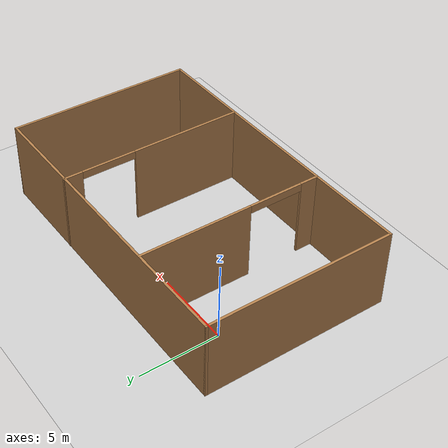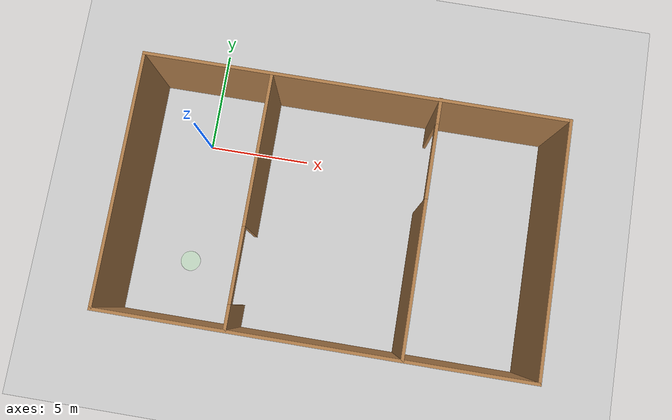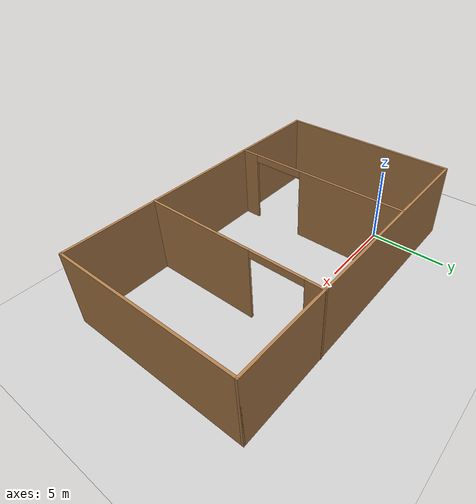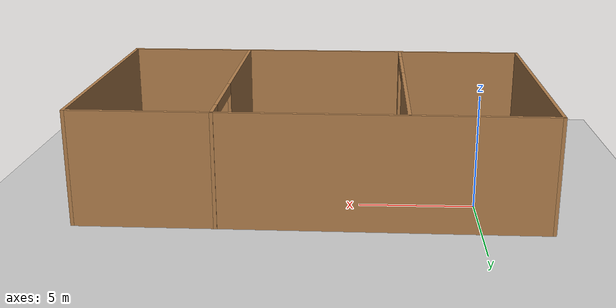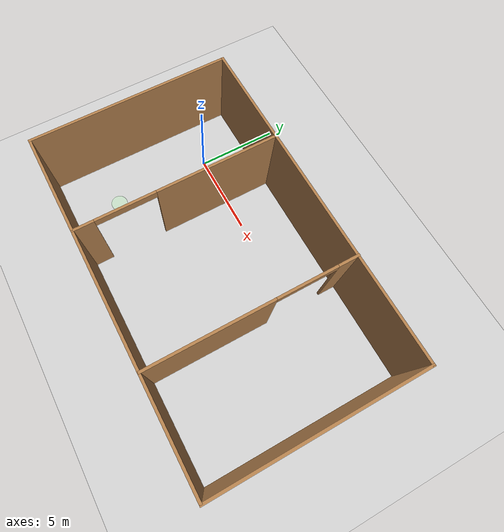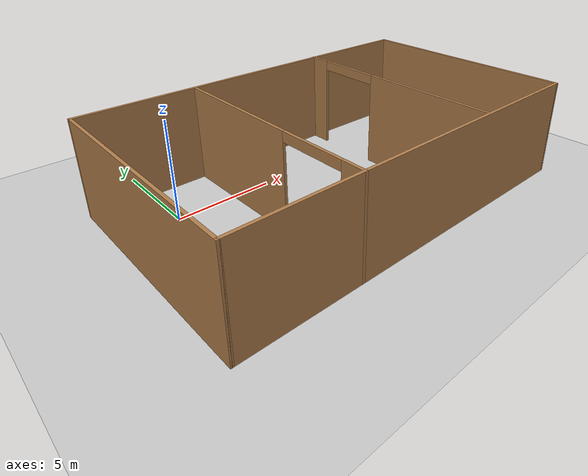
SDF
<?xml version="1.0" ?>
<sdf version='1.6'>
  <world name='default'>
    <light name='sun' type='directional'>
      <cast_shadows>1</cast_shadows>
      <pose frame=''>0 0 10 0 -0 0</pose>
      <diffuse>0.8 0.8 0.8 1</diffuse>
      <specular>0.2 0.2 0.2 1</specular>
      <attenuation>
        <range>1000</range>
        <constant>0.9</constant>
        <linear>0.01</linear>
        <quadratic>0.001</quadratic>
      </attenuation>
      <direction>-0.5 0.1 -0.9</direction>
    </light>
    <model name='ground_plane'>
      <static>1</static>
      <link name='link'>
        <collision name='collision'>
          <geometry>
            <plane>
              <normal>0 0 1</normal>
              <size>100 100</size>
            </plane>
          </geometry>
          <surface>
            <friction>
              <ode>
                <mu>100</mu>
                <mu2>50</mu2>
              </ode>
              <torsional>
                <ode/>
              </torsional>
            </friction>
            <contact>
              <ode/>
            </contact>
            <bounce/>
          </surface>
          <max_contacts>10</max_contacts>
        </collision>
        <visual name='visual'>
          <cast_shadows>0</cast_shadows>
          <geometry>
            <plane>
              <normal>0 0 1</normal>
              <size>100 100</size>
            </plane>
          </geometry>
          <material>
            <script>
              <uri>file://media/materials/scripts/gazebo.material</uri>
              <name>Gazebo/Grey</name>
            </script>
          </material>
        </visual>
        <self_collide>0</self_collide>
        <kinematic>0</kinematic>
        <enable_wind>0</enable_wind>
      </link>
    </model>
    <gravity>0 0 -9.8</gravity>
    <magnetic_field>6e-06 2.3e-05 -4.2e-05</magnetic_field>
    <atmosphere type='adiabatic'/>
    <physics name='default_physics' default='0' type='ode'>
      <max_step_size>0.001</max_step_size>
      <real_time_factor>1</real_time_factor>
      <real_time_update_rate>1000</real_time_update_rate>
    </physics>
    <scene>
      <ambient>0.4 0.4 0.4 1</ambient>
      <background>0.7 0.7 0.7 1</background>
      <shadows>1</shadows>
    </scene>
    <spherical_coordinates>
      <surface_model>EARTH_WGS84</surface_model>
      <latitude_deg>0</latitude_deg>
      <longitude_deg>0</longitude_deg>
      <elevation>0</elevation>
      <heading_deg>0</heading_deg>
    </spherical_coordinates>
    <model name='3rooms'>
      <pose frame=''>7 -3 0 0 -0 0</pose>
      <link name='Wall_12'>
        <pose frame=''>-3.925 -0.0115 0 0 0 -1.5708</pose>
        <visual name='Wall_12_Visual_0'>
          <pose frame=''>-2.37496 0 2.5 0 -0 0</pose>
          <geometry>
            <box>
              <size>7.25007 0.15 5</size>
            </box>
          </geometry>
          <material>
            <script>
              <uri>file://media/materials/scripts/gazebo.material</uri>
              <name>Gazebo/Wood</name>
            </script>
            <ambient>1 1 1 1</ambient>
          </material>
          <meta>
            <layer>0</layer>
          </meta>
        </visual>
        <collision name='Wall_12_Collision_0'>
          <geometry>
            <box>
              <size>7.25007 0.15 5</size>
            </box>
          </geometry>
          <pose frame=''>-2.37496 0 2.5 0 -0 0</pose>
          <max_contacts>10</max_contacts>
          <surface>
            <contact>
              <ode/>
            </contact>
            <bounce/>
            <friction>
              <torsional>
                <ode/>
              </torsional>
              <ode/>
            </friction>
          </surface>
        </collision>
        <visual name='Wall_12_Visual_1'>
          <pose frame=''>5.37504 0 2.5 0 -0 0</pose>
          <geometry>
            <box>
              <size>1.24993 0.15 5</size>
            </box>
          </geometry>
          <material>
            <script>
              <uri>file://media/materials/scripts/gazebo.material</uri>
              <name>Gazebo/Wood</name>
            </script>
            <ambient>1 1 1 1</ambient>
          </material>
          <meta>
            <layer>0</layer>
          </meta>
        </visual>
        <collision name='Wall_12_Collision_1'>
          <geometry>
            <box>
              <size>1.24993 0.15 5</size>
            </box>
          </geometry>
          <pose frame=''>5.37504 0 2.5 0 -0 0</pose>
          <max_contacts>10</max_contacts>
          <surface>
            <contact>
              <ode/>
            </contact>
            <bounce/>
            <friction>
              <torsional>
                <ode/>
              </torsional>
              <ode/>
            </friction>
          </surface>
        </collision>
        <visual name='Wall_12_Visual_2'>
          <pose frame=''>3.00007 0 4.75 0 -0 0</pose>
          <geometry>
            <box>
              <size>3.5 0.15 0.5</size>
            </box>
          </geometry>
          <material>
            <script>
              <uri>file://media/materials/scripts/gazebo.material</uri>
              <name>Gazebo/Wood</name>
            </script>
            <ambient>1 1 1 1</ambient>
          </material>
          <meta>
            <layer>0</layer>
          </meta>
        </visual>
        <collision name='Wall_12_Collision_2'>
          <geometry>
            <box>
              <size>3.5 0.15 0.5</size>
            </box>
          </geometry>
          <pose frame=''>3.00007 0 4.75 0 -0 0</pose>
          <max_contacts>10</max_contacts>
          <surface>
            <contact>
              <ode/>
            </contact>
            <bounce/>
            <friction>
              <torsional>
                <ode/>
              </torsional>
              <ode/>
            </friction>
          </surface>
        </collision>
        <self_collide>0</self_collide>
        <kinematic>0</kinematic>
        <enable_wind>0</enable_wind>
      </link>
      <link name='Wall_14'>
        <pose frame=''>3.925 0.0115 0 0 0 -1.5708</pose>
        <visual name='Wall_14_Visual_0'>
          <pose frame=''>-5.38489 0 2.5 0 -0 0</pose>
          <geometry>
            <box>
              <size>1.23022 0.15 5</size>
            </box>
          </geometry>
          <material>
            <script>
              <uri>file://media/materials/scripts/gazebo.material</uri>
              <name>Gazebo/Wood</name>
            </script>
            <ambient>1 1 1 1</ambient>
          </material>
          <meta>
            <layer>0</layer>
          </meta>
        </visual>
        <collision name='Wall_14_Collision_0'>
          <geometry>
            <box>
              <size>1.23022 0.15 5</size>
            </box>
          </geometry>
          <pose frame=''>-5.38489 0 2.5 0 -0 0</pose>
          <max_contacts>10</max_contacts>
          <surface>
            <contact>
              <ode/>
            </contact>
            <bounce/>
            <friction>
              <torsional>
                <ode/>
              </torsional>
              <ode/>
            </friction>
          </surface>
        </collision>
        <visual name='Wall_14_Visual_1'>
          <pose frame=''>2.36511 0 2.5 0 -0 0</pose>
          <geometry>
            <box>
              <size>7.26978 0.15 5</size>
            </box>
          </geometry>
          <material>
            <script>
              <uri>file://media/materials/scripts/gazebo.material</uri>
              <name>Gazebo/Wood</name>
            </script>
            <ambient>1 1 1 1</ambient>
          </material>
          <meta>
            <layer>0</layer>
          </meta>
        </visual>
        <collision name='Wall_14_Collision_1'>
          <geometry>
            <box>
              <size>7.26978 0.15 5</size>
            </box>
          </geometry>
          <pose frame=''>2.36511 0 2.5 0 -0 0</pose>
          <max_contacts>10</max_contacts>
          <surface>
            <contact>
              <ode/>
            </contact>
            <bounce/>
            <friction>
              <torsional>
                <ode/>
              </torsional>
              <ode/>
            </friction>
          </surface>
        </collision>
        <visual name='Wall_14_Visual_2'>
          <pose frame=''>-3.01978 0 4.75 0 -0 0</pose>
          <geometry>
            <box>
              <size>3.5 0.15 0.5</size>
            </box>
          </geometry>
          <material>
            <script>
              <uri>file://media/materials/scripts/gazebo.material</uri>
              <name>Gazebo/Wood</name>
            </script>
            <ambient>1 1 1 1</ambient>
          </material>
          <meta>
            <layer>0</layer>
          </meta>
        </visual>
        <collision name='Wall_14_Collision_2'>
          <geometry>
            <box>
              <size>3.5 0.15 0.5</size>
            </box>
          </geometry>
          <pose frame=''>-3.01978 0 4.75 0 -0 0</pose>
          <max_contacts>10</max_contacts>
          <surface>
            <contact>
              <ode/>
            </contact>
            <bounce/>
            <friction>
              <torsional>
                <ode/>
              </torsional>
              <ode/>
            </friction>
          </surface>
        </collision>
        <self_collide>0</self_collide>
        <kinematic>0</kinematic>
        <enable_wind>0</enable_wind>
      </link>
      <link name='Wall_3'>
        <collision name='Wall_3_Collision'>
          <geometry>
            <box>
              <size>12 0.15 5</size>
            </box>
          </geometry>
          <pose frame=''>0 0 2.5 0 -0 0</pose>
          <max_contacts>10</max_contacts>
          <surface>
            <contact>
              <ode/>
            </contact>
            <bounce/>
            <friction>
              <torsional>
                <ode/>
              </torsional>
              <ode/>
            </friction>
          </surface>
        </collision>
        <visual name='Wall_3_Visual'>
          <pose frame=''>0 0 2.5 0 -0 0</pose>
          <geometry>
            <box>
              <size>12 0.15 5</size>
            </box>
          </geometry>
          <material>
            <script>
              <uri>file://media/materials/scripts/gazebo.material</uri>
              <name>Gazebo/Wood</name>
            </script>
            <ambient>1 1 1 1</ambient>
          </material>
          <meta>
            <layer>0</layer>
          </meta>
        </visual>
        <pose frame=''>-9.925 -0.0115 0 0 0 -1.5708</pose>
        <self_collide>0</self_collide>
        <kinematic>0</kinematic>
        <enable_wind>0</enable_wind>
      </link>
      <link name='Wall_5'>
        <collision name='Wall_5_Collision'>
          <geometry>
            <box>
              <size>20 0.15 5</size>
            </box>
          </geometry>
          <pose frame=''>0 0 2.5 0 -0 0</pose>
          <max_contacts>10</max_contacts>
          <surface>
            <contact>
              <ode/>
            </contact>
            <bounce/>
            <friction>
              <torsional>
                <ode/>
              </torsional>
              <ode/>
            </friction>
          </surface>
        </collision>
        <visual name='Wall_5_Visual'>
          <pose frame=''>0 0 2.5 0 -0 0</pose>
          <geometry>
            <box>
              <size>20 0.15 5</size>
            </box>
          </geometry>
          <material>
            <script>
              <uri>file://media/materials/scripts/gazebo.material</uri>
              <name>Gazebo/Wood</name>
            </script>
            <ambient>1 1 1 1</ambient>
          </material>
          <meta>
            <layer>0</layer>
          </meta>
        </visual>
        <pose frame=''>0 -5.9365 0 0 -0 0</pose>
        <self_collide>0</self_collide>
        <kinematic>0</kinematic>
        <enable_wind>0</enable_wind>
      </link>
      <link name='Wall_6'>
        <collision name='Wall_6_Collision'>
          <geometry>
            <box>
              <size>12 0.15 5</size>
            </box>
          </geometry>
          <pose frame=''>0 0 2.5 0 -0 0</pose>
          <max_contacts>10</max_contacts>
          <surface>
            <contact>
              <ode/>
            </contact>
            <bounce/>
            <friction>
              <torsional>
                <ode/>
              </torsional>
              <ode/>
            </friction>
          </surface>
        </collision>
        <visual name='Wall_6_Visual'>
          <pose frame=''>0 0 2.5 0 -0 0</pose>
          <geometry>
            <box>
              <size>12 0.15 5</size>
            </box>
          </geometry>
          <material>
            <script>
              <uri>file://media/materials/scripts/gazebo.material</uri>
              <name>Gazebo/Wood</name>
            </script>
            <ambient>1 1 1 1</ambient>
          </material>
          <meta>
            <layer>0</layer>
          </meta>
        </visual>
        <pose frame=''>9.925 -0.0115 0 0 -0 1.5708</pose>
        <self_collide>0</self_collide>
        <kinematic>0</kinematic>
        <enable_wind>0</enable_wind>
      </link>
      <link name='Wall_8'>
        <collision name='Wall_8_Collision'>
          <geometry>
            <box>
              <size>20 0.15 5</size>
            </box>
          </geometry>
          <pose frame=''>0 0 2.5 0 -0 0</pose>
          <max_contacts>10</max_contacts>
          <surface>
            <contact>
              <ode/>
            </contact>
            <bounce/>
            <friction>
              <torsional>
                <ode/>
              </torsional>
              <ode/>
            </friction>
          </surface>
        </collision>
        <visual name='Wall_8_Visual'>
          <pose frame=''>0 0 2.5 0 -0 0</pose>
          <geometry>
            <box>
              <size>20 0.15 5</size>
            </box>
          </geometry>
          <material>
            <script>
              <uri>file://media/materials/scripts/gazebo.material</uri>
              <name>Gazebo/Wood</name>
            </script>
            <ambient>1 1 1 1</ambient>
          </material>
          <meta>
            <layer>0</layer>
          </meta>
        </visual>
        <pose frame=''>0 5.9135 0 0 -0 0</pose>
        <self_collide>0</self_collide>
        <kinematic>0</kinematic>
        <enable_wind>0</enable_wind>
      </link>
      <static>1</static>
    </model>
    <gui fullscreen='0'>
      <camera name='user_camera'>
        <pose frame=''>4.06044 -4.37213 36.5322 0 1.4858 0</pose>
        <view_controller>orbit</view_controller>
        <projection_type>perspective</projection_type>
      </camera>
    </gui>
    <wind/>
    <model name='spotlight'>
      <link name='link'>
        <inertial>
          <mass>1</mass>
          <inertia>
            <ixx>0.145833</ixx>
            <ixy>0</ixy>
            <ixz>0</ixz>
            <iyy>0.145833</iyy>
            <iyz>0</iyz>
            <izz>0.125</izz>
          </inertia>
          <pose frame=''>0 0 0 0 -0 0</pose>
        </inertial>
        <self_collide>0</self_collide>
        <enable_wind>0</enable_wind>
        <kinematic>0</kinematic>
        <pose frame=''>0 0 0 0 -0 0</pose>
        <gravity>0</gravity>
        <visual name='visual'>
          <geometry>
            <cylinder>
              <radius>0.5</radius>
              <length>0.02</length>
            </cylinder>
          </geometry>
          <material>
            <script>
              <name>Gazebo/Grey</name>
              <uri>file://media/materials/scripts/gazebo.material</uri>
            </script>
            <shader type='pixel'>
              <normal_map>__default__</normal_map>
            </shader>
            <ambient>0.1 1 0.1 1</ambient>
            <diffuse>0.7 1 0.7 1</diffuse>
            <specular>0.01 0.31 0.01 1</specular>
            <emissive>0 0 0 1</emissive>
          </material>
          <pose frame=''>0 0 0 0 -0 0</pose>
          <transparency>0.7</transparency>
          <cast_shadows>1</cast_shadows>
        </visual>
      </link>
      <static>0</static>
      <allow_auto_disable>1</allow_auto_disable>
      <pose frame=''>0 -6.0 0 0 -0 0</pose>
      <visibility_flags> 0 </visibility_flags>
    </model>
  </world>
</sdf>
